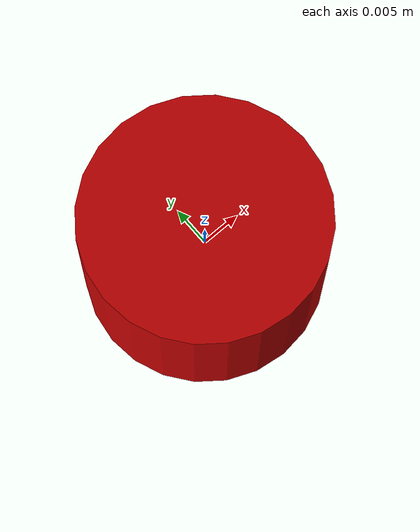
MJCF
<mujoco model="button_model">
  <asset>
    <!-- 红色金属材质 -->
    <texture file="../textures/metal.png" name="tex-metal" type="2d"/>
    <material name="metal" reflectance="0.5" texrepeat="1 1" texture="tex-metal" texuniform="true" rgba="1 0 0 1"/>
  </asset>

  <worldbody>
    <!-- 外层空 body，用作随机放置容器 -->
    <body name="button_base" pos="0 0 0">
      <!-- 内层 body，实际按钮对象 -->
      <body name="object" pos="0 0 0">
        <!-- 滑动关节，沿 z 方向 -->
        <joint name="button_slide" type="slide" axis="0 0 1" damping="0.001"/>
        <!-- 按钮几何 -->
        <geom name="button_geom" type="cylinder" size="0.015 0.01"
              pos="0 0 0" material="metal"
              solimp="0.998 0.998 0.001" solref="0.001 1"
              density="100" friction="0.95 0.3 0.1" group="0" condim="4"/>
      </body>

      <!-- placement sampler sites -->
      <site name="bottom_site" pos="0 0 -0.005" size="0.005" rgba="0 0 0 0"/>
      <site name="top_site" pos="0 0 0.005" size="0.005" rgba="0 0 0 0"/>
      <site name="horizontal_radius_site" pos="0.025 0.025 0" size="0.005" rgba="0 0 0 0"/>
    </body>

    <!-- 桌子 -->
    <body name="table" pos="0 0 0.8">
      <geom name="table_collision" type="box" size="0.4 0.4 0.025" rgba="0.8 0.8 0.8 1"/>
    </body>
  </worldbody>
</mujoco>
